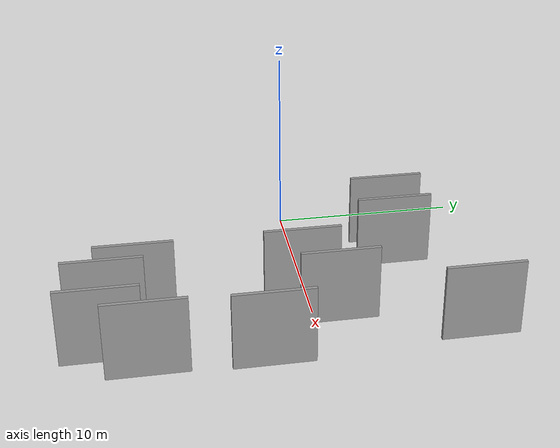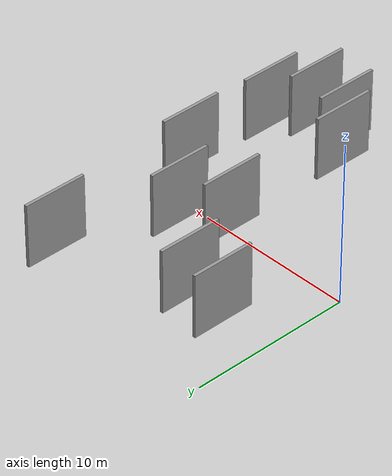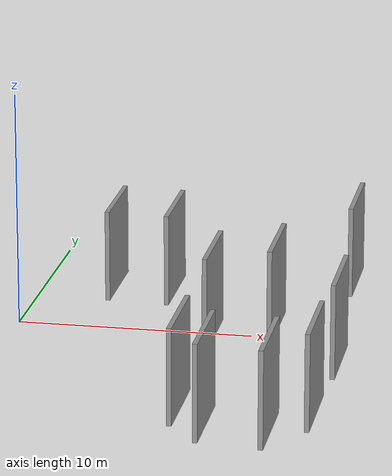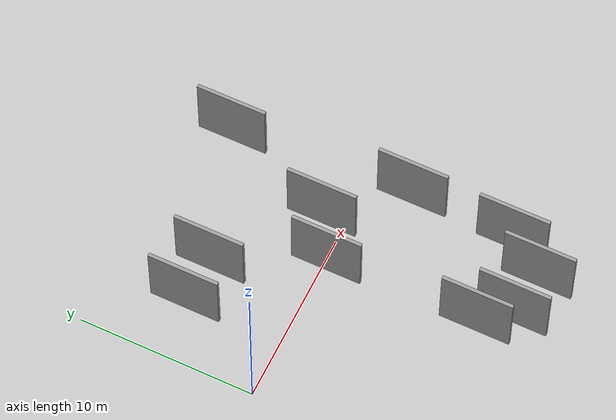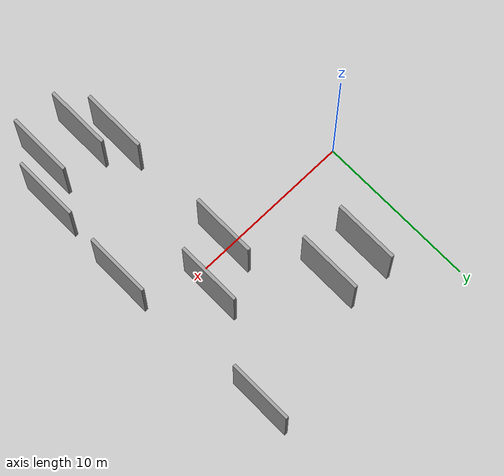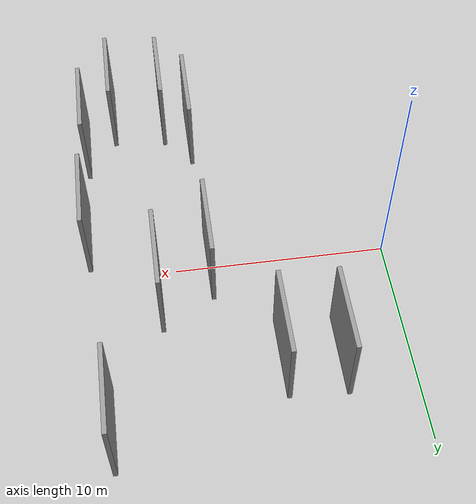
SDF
<sdf version="1.6">
 <world name="default">
  <scene>
   <sky><clouds><speed>12</speed></clouds></sky>
   <ambient>0.4 0.4 0.4 1</ambient>
   <background>0.7 0.7 0.7 1</background>
   <shadows>1</shadows>
  </scene>
  <gravity>0 0 -9.8066</gravity>
  <magnetic_field>6e-06 2.3e-05 -4.2e-05</magnetic_field>
  <physics default="0" name="default_physics" type="ode">
   <ode>
    <solver>
     <type>quick</type>
     <iters>10</iters>
     <sor>1.0</sor>
     <use_dynamic_moi_rescaling>0</use_dynamic_moi_rescaling>
    </solver>
    <constraints>
     <cfm>0</cfm>
     <erp>0.2</erp>
     <contact_max_correcting_vel>100</contact_max_correcting_vel>
     <contact_surface_layer>0.001</contact_surface_layer>
    </constraints>
   </ode>
   <max_step_size>0.004</max_step_size>
   <real_time_factor>1</real_time_factor>
   <real_time_update_rate>250</real_time_update_rate>
  </physics>
  <light name="sun" type="directional">
   <pose>0 0 10 0 0 0</pose>
   <diffuse>0.8 0.8 0.8 1</diffuse>
   <specular>0.2 0.2 0.2 1</specular>
   <attenuation>
    <range>1000</range>
    <constant>0.9</constant>
    <linear>0.01</linear>
    <quadratic>0.001</quadratic>
   </attenuation>
   <direction>-0.5 0.1 -0.9</direction>
  </light>
  <model name="grey_wall_1">
   <static>1</static>
   <pose>3.1209 5.4507 0.0 0.000000 0.000000 1.570796</pose>
   <link name="link">
    <pose>0 0 2.00 0 0 0</pose>
    <collision name="collision"><geometry><box><size>4.00 0.2 4.00</size></box></geometry></collision>
    <visual name="visual">
     <cast_shadows>0</cast_shadows>
     <geometry><box><size>4.00 0.2 4.00</size></box></geometry>
     <material>
      <script>
       <uri>model://grey_wall/materials/scripts</uri>
       <uri>model://grey_wall/materials/textures</uri>
       <name>vrc/grey_wall</name>
      </script>
     </material>
    </visual>
   </link>
  </model>
  <model name="grey_wall_2">
   <static>1</static>
   <pose>10.8545 1.2473 0.0 0.000000 0.000000 1.570796</pose>
   <link name="link">
    <pose>0 0 2.00 0 0 0</pose>
    <collision name="collision"><geometry><box><size>4.00 0.2 4.00</size></box></geometry></collision>
    <visual name="visual">
     <cast_shadows>0</cast_shadows>
     <geometry><box><size>4.00 0.2 4.00</size></box></geometry>
     <material>
      <script>
       <uri>model://grey_wall/materials/scripts</uri>
       <uri>model://grey_wall/materials/textures</uri>
       <name>vrc/grey_wall</name>
      </script>
     </material>
    </visual>
   </link>
  </model>
  <model name="grey_wall_3">
   <static>1</static>
   <pose>13.3916 7.7912 0.0 0.000000 0.000000 1.570796</pose>
   <link name="link">
    <pose>0 0 2.00 0 0 0</pose>
    <collision name="collision"><geometry><box><size>4.00 0.2 4.00</size></box></geometry></collision>
    <visual name="visual">
     <cast_shadows>0</cast_shadows>
     <geometry><box><size>4.00 0.2 4.00</size></box></geometry>
     <material>
      <script>
       <uri>model://grey_wall/materials/scripts</uri>
       <uri>model://grey_wall/materials/textures</uri>
       <name>vrc/grey_wall</name>
      </script>
     </material>
    </visual>
   </link>
  </model>
  <model name="grey_wall_4">
   <static>1</static>
   <pose>8.5075 -8.7374 0.0 0.000000 0.000000 1.570796</pose>
   <link name="link">
    <pose>0 0 2.00 0 0 0</pose>
    <collision name="collision"><geometry><box><size>4.00 0.2 4.00</size></box></geometry></collision>
    <visual name="visual">
     <cast_shadows>0</cast_shadows>
     <geometry><box><size>4.00 0.2 4.00</size></box></geometry>
     <material>
      <script>
       <uri>model://grey_wall/materials/scripts</uri>
       <uri>model://grey_wall/materials/textures</uri>
       <name>vrc/grey_wall</name>
      </script>
     </material>
    </visual>
   </link>
  </model>
  <model name="grey_wall_5">
   <static>1</static>
   <pose>5.7404 5.2872 0.0 0.000000 0.000000 1.570796</pose>
   <link name="link">
    <pose>0 0 2.00 0 0 0</pose>
    <collision name="collision"><geometry><box><size>4.00 0.2 4.00</size></box></geometry></collision>
    <visual name="visual">
     <cast_shadows>0</cast_shadows>
     <geometry><box><size>4.00 0.2 4.00</size></box></geometry>
     <material>
      <script>
       <uri>model://grey_wall/materials/scripts</uri>
       <uri>model://grey_wall/materials/textures</uri>
       <name>vrc/grey_wall</name>
      </script>
     </material>
    </visual>
   </link>
  </model>
  <model name="grey_wall_6">
   <static>1</static>
   <pose>12.3749 -10.5636 0.0 0.000000 0.000000 1.570796</pose>
   <link name="link">
    <pose>0 0 2.00 0 0 0</pose>
    <collision name="collision"><geometry><box><size>4.00 0.2 4.00</size></box></geometry></collision>
    <visual name="visual">
     <cast_shadows>0</cast_shadows>
     <geometry><box><size>4.00 0.2 4.00</size></box></geometry>
     <material>
      <script>
       <uri>model://grey_wall/materials/scripts</uri>
       <uri>model://grey_wall/materials/textures</uri>
       <name>vrc/grey_wall</name>
      </script>
     </material>
    </visual>
   </link>
  </model>
  <model name="grey_wall_7">
   <static>1</static>
   <pose>8.3799 -0.2103 0.0 0.000000 0.000000 1.570796</pose>
   <link name="link">
    <pose>0 0 2.00 0 0 0</pose>
    <collision name="collision"><geometry><box><size>4.00 0.2 4.00</size></box></geometry></collision>
    <visual name="visual">
     <cast_shadows>0</cast_shadows>
     <geometry><box><size>4.00 0.2 4.00</size></box></geometry>
     <material>
      <script>
       <uri>model://grey_wall/materials/scripts</uri>
       <uri>model://grey_wall/materials/textures</uri>
       <name>vrc/grey_wall</name>
      </script>
     </material>
    </visual>
   </link>
  </model>
  <model name="grey_wall_8">
   <static>1</static>
   <pose>13.8383 -8.4525 0.0 0.000000 0.000000 1.570796</pose>
   <link name="link">
    <pose>0 0 2.00 0 0 0</pose>
    <collision name="collision"><geometry><box><size>4.00 0.2 4.00</size></box></geometry></collision>
    <visual name="visual">
     <cast_shadows>0</cast_shadows>
     <geometry><box><size>4.00 0.2 4.00</size></box></geometry>
     <material>
      <script>
       <uri>model://grey_wall/materials/scripts</uri>
       <uri>model://grey_wall/materials/textures</uri>
       <name>vrc/grey_wall</name>
      </script>
     </material>
    </visual>
   </link>
  </model>
  <model name="grey_wall_9">
   <static>1</static>
   <pose>9.7975 -10.2760 0.0 0.000000 0.000000 1.570796</pose>
   <link name="link">
    <pose>0 0 2.00 0 0 0</pose>
    <collision name="collision"><geometry><box><size>4.00 0.2 4.00</size></box></geometry></collision>
    <visual name="visual">
     <cast_shadows>0</cast_shadows>
     <geometry><box><size>4.00 0.2 4.00</size></box></geometry>
     <material>
      <script>
       <uri>model://grey_wall/materials/scripts</uri>
       <uri>model://grey_wall/materials/textures</uri>
       <name>vrc/grey_wall</name>
      </script>
     </material>
    </visual>
   </link>
  </model>
  <model name="grey_wall_10">
   <static>1</static>
   <pose>14.0242 -2.5504 0.0 0.000000 0.000000 1.570796</pose>
   <link name="link">
    <pose>0 0 2.00 0 0 0</pose>
    <collision name="collision"><geometry><box><size>4.00 0.2 4.00</size></box></geometry></collision>
    <visual name="visual">
     <cast_shadows>0</cast_shadows>
     <geometry><box><size>4.00 0.2 4.00</size></box></geometry>
     <material>
      <script>
       <uri>model://grey_wall/materials/scripts</uri>
       <uri>model://grey_wall/materials/textures</uri>
       <name>vrc/grey_wall</name>
      </script>
     </material>
    </visual>
   </link>
  </model>
 </world>
</sdf>
